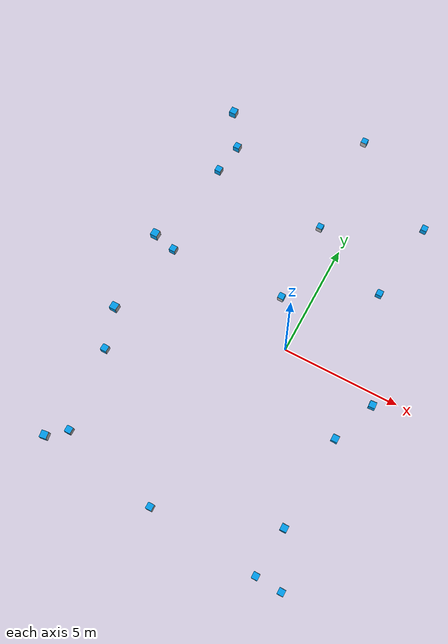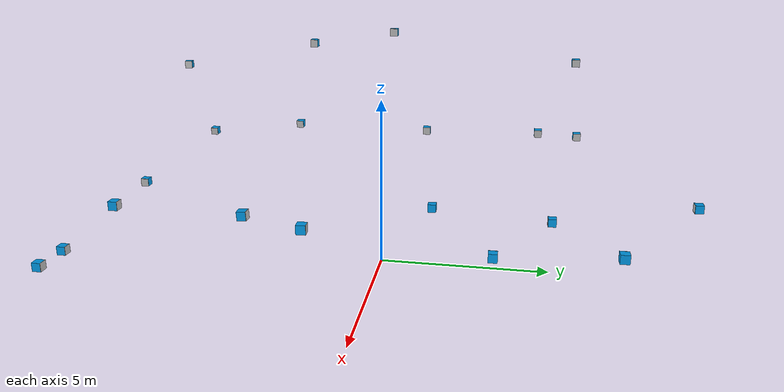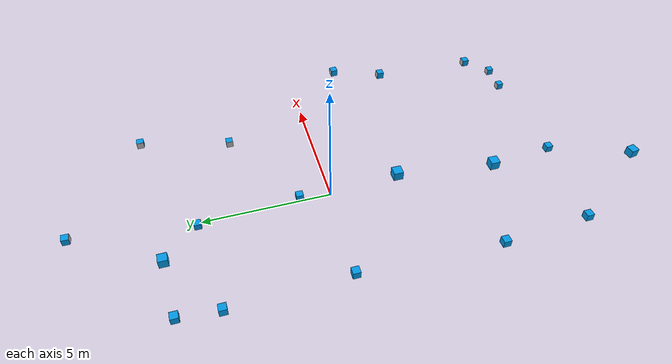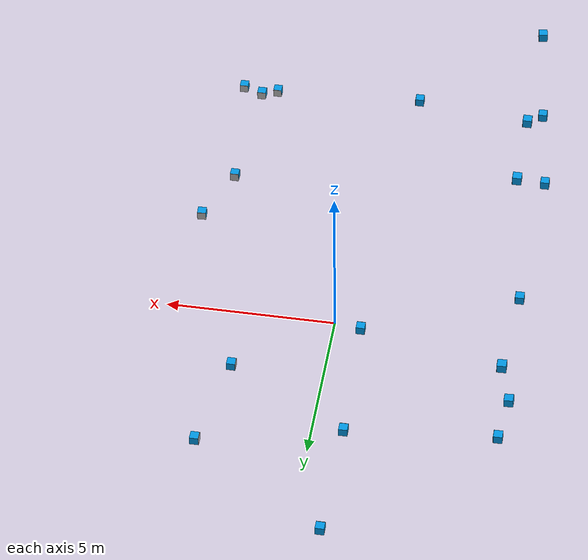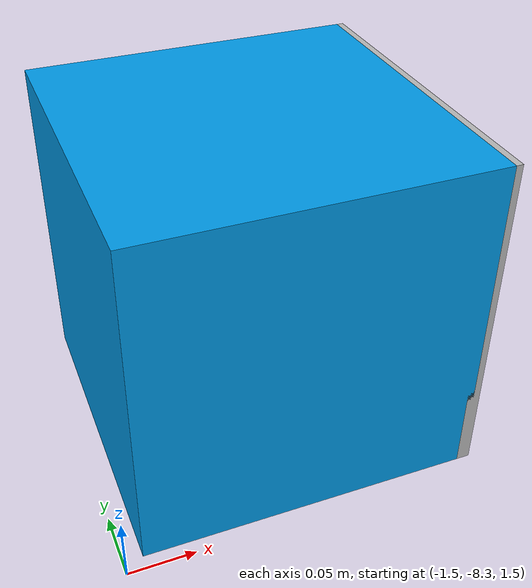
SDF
<sdf version="1.7">
 <world name="default">
  <gravity>0 0 -9.8</gravity>
  <physics name="default_physics" default="0" type="ode">
   <max_step_size>0.001</max_step_size>
   <real_time_factor>1</real_time_factor>
   <real_time_update_rate>1000</real_time_update_rate>
  </physics>
  <light name="Warehouse_CeilingLight_003" type="point">
   <pose>0 0 9 0 -0 0</pose>
   <diffuse>0.5 0.5 0.5 1</diffuse>
   <specular>0.2 0.2 0.2 1</specular>
   <attenuation>
    <range>80</range>
    <constant>0.3</constant>
    <linear>0.01</linear>
    <quadratic>0.001</quadratic>
   </attenuation>
   <direction>0.1 0.1 -1</direction>
   <spot><inner_angle>0</inner_angle><outer_angle>0</outer_angle><falloff>0</falloff></spot>
  </light>
  <model name="qr_box_marker_1">
   <frame name="qr_box_marker_1::__model__" attached_to="qr_box_marker_1::link">
    <pose relative_to="__model__">0 0 0 0 -0 0</pose>
   </frame>
   <static>1</static>
   <link name="qr_box_marker_1::link">
    <visual name="top_face">
     <geometry><box><size>0.25 0.25 0.01</size></box></geometry>
     <material>
      <script>
       <uri>model://qr_box_marker_1/materials/scripts</uri>
       <uri>model://qr_box_marker_1/materials/textures</uri>
       <name>qr_code_material_1</name>
      </script>
     </material>
     <pose>0 0 0.125 0 -0 0</pose>
    </visual>
    <visual name="side_faces">
     <geometry><box><size>0.25 0.25 0.25</size></box></geometry>
     <material>
      <ambient>0 0.6 0.9 1</ambient>
      <diffuse>0 0.6 0.9 1</diffuse>
      <specular>0.1 0.1 0.1 1</specular>
      <emissive>0 0 0 1</emissive>
     </material>
    </visual>
    <collision name="collision"><geometry><box><size>0.25 0.25 0.25</size></box></geometry></collision>
    <pose relative_to="qr_box_marker_1::__model__">0 0 0 0 -0 0</pose>
   </link>
   <pose>-0.97692 1.42304 1.46008 1.58342 -0 0</pose>
  </model>
  <model name="qr_box_marker_2">
   <frame name="qr_box_marker_2::__model__" attached_to="qr_box_marker_2::link">
    <pose relative_to="__model__">0 0 0 0 -0 0</pose>
   </frame>
   <static>1</static>
   <link name="qr_box_marker_2::link">
    <visual name="top_face">
     <geometry><box><size>0.25 0.25 0.01</size></box></geometry>
     <material>
      <script>
       <uri>model://qr_box_marker_2/materials/scripts</uri>
       <uri>model://qr_box_marker_2/materials/textures</uri>
       <name>qr_code_material_2</name>
      </script>
     </material>
     <pose>0 0 0.125 0 -0 0</pose>
    </visual>
    <visual name="side_faces">
     <geometry><box><size>0.25 0.25 0.25</size></box></geometry>
     <material>
      <ambient>0 0.6 0.9 1</ambient>
      <diffuse>0 0.6 0.9 1</diffuse>
      <specular>0.1 0.1 0.1 1</specular>
      <emissive>0 0 0 1</emissive>
     </material>
    </visual>
    <collision name="collision"><geometry><box><size>0.25 0.25 0.25</size></box></geometry></collision>
    <pose relative_to="qr_box_marker_2::__model__">0 0 0 0 -0 0</pose>
   </link>
   <pose>-5.0209 -7.96652 4.93196 1.98565 1.55962 2.13802</pose>
  </model>
  <model name="qr_box_marker_3">
   <frame name="qr_box_marker_3::__model__" attached_to="qr_box_marker_3::link">
    <pose relative_to="__model__">0 0 0 0 -0 0</pose>
   </frame>
   <static>1</static>
   <link name="qr_box_marker_3::link">
    <visual name="top_face">
     <geometry><box><size>0.25 0.25 0.01</size></box></geometry>
     <material>
      <script>
       <uri>model://qr_box_marker_3/materials/scripts</uri>
       <uri>model://qr_box_marker_3/materials/textures/qr_code_3.png</uri>
       <name>qr_code_material_3</name>
      </script>
     </material>
     <pose>0 0 0.125 0 -0 0</pose>
    </visual>
    <visual name="side_faces">
     <geometry><box><size>0.25 0.25 0.25</size></box></geometry>
     <material>
      <ambient>0 0.6 0.9 1</ambient>
      <diffuse>0 0.6 0.9 1</diffuse>
      <specular>0.1 0.1 0.1 1</specular>
      <emissive>0 0 0 1</emissive>
     </material>
    </visual>
    <collision name="collision"><geometry><box><size>0.25 0.25 0.25</size></box></geometry></collision>
    <pose relative_to="qr_box_marker_3::__model__">0 0 0 0 -0 0</pose>
   </link>
   <pose>2.42021 3.37329 1.48272 3.14159 -1.5587 3.14159</pose>
  </model>
  <model name="qr_box_marker_4">
   <frame name="qr_box_marker_4::__model__" attached_to="qr_box_marker_4::link">
    <pose relative_to="__model__">0 0 0 0 -0 0</pose>
   </frame>
   <static>1</static>
   <link name="qr_box_marker_4::link">
    <visual name="top_face">
     <geometry><box><size>0.25 0.25 0.01</size></box></geometry>
     <material>
      <script>
       <uri>model://qr_box_marker_4/materials/scripts</uri>
       <uri>model://qr_box_marker_4/materials/textures/qr_code_4.png</uri>
       <name>qr_code_material_4</name>
      </script>
     </material>
     <pose>0 0 0.125 0 -0 0</pose>
    </visual>
    <visual name="side_faces">
     <geometry><box><size>0.25 0.25 0.25</size></box></geometry>
     <material>
      <ambient>0 0.6 0.9 1</ambient>
      <diffuse>0 0.6 0.9 1</diffuse>
      <specular>0.1 0.1 0.1 1</specular>
      <emissive>0 0 0 1</emissive>
     </material>
    </visual>
    <collision name="collision"><geometry><box><size>0.25 0.25 0.25</size></box></geometry></collision>
    <pose relative_to="qr_box_marker_4::__model__">0 0 0 0 -0 0</pose>
   </link>
   <pose>-1.04472 5.06942 1.19301 1.57476 -0 0</pose>
  </model>
  <model name="qr_box_marker_5">
   <frame name="qr_box_marker_5::__model__" attached_to="qr_box_marker_5::link">
    <pose relative_to="__model__">0 0 0 0 -0 0</pose>
   </frame>
   <static>1</static>
   <link name="qr_box_marker_5::link">
    <visual name="top_face">
     <geometry><box><size>0.25 0.25 0.01</size></box></geometry>
     <material>
      <script>
       <uri>model://qr_box_marker_5/materials/scripts</uri>
       <uri>model://qr_box_marker_5/materials/textures/qr_code_5.png</uri>
       <name>qr_code_material_5</name>
      </script>
     </material>
     <pose>0 0 0.125 0 -0 0</pose>
    </visual>
    <visual name="side_faces">
     <geometry><box><size>0.25 0.25 0.25</size></box></geometry>
     <material>
      <ambient>0 0.6 0.9 1</ambient>
      <diffuse>0 0.6 0.9 1</diffuse>
      <specular>0.1 0.1 0.1 1</specular>
      <emissive>0 0 0 1</emissive>
     </material>
    </visual>
    <collision name="collision"><geometry><box><size>0.25 0.25 0.25</size></box></geometry></collision>
    <pose relative_to="qr_box_marker_5::__model__">0 0 0 0 -0 0</pose>
   </link>
   <pose>-1.06168 9.2099 1.8859 1.58858 -0 0</pose>
  </model>
  <model name="qr_box_marker_6">
   <frame name="qr_box_marker_6::__model__" attached_to="qr_box_marker_6::link">
    <pose relative_to="__model__">0 0 0 0 -0 0</pose>
   </frame>
   <static>1</static>
   <link name="qr_box_marker_6::link">
    <visual name="top_face">
     <geometry><box><size>0.25 0.25 0.01</size></box></geometry>
     <material>
      <script>
       <uri>model://qr_box_marker_6/materials/scripts</uri>
       <uri>model://qr_box_marker_6/materials/textures/qr_code_6.png</uri>
       <name>qr_code_material_6</name>
      </script>
     </material>
     <pose>0 0 0.125 0 -0 0</pose>
    </visual>
    <visual name="side_faces">
     <geometry><box><size>0.25 0.25 0.25</size></box></geometry>
     <material>
      <ambient>0 0.6 0.9 1</ambient>
      <diffuse>0 0.6 0.9 1</diffuse>
      <specular>0.1 0.1 0.1 1</specular>
      <emissive>0 0 0 1</emissive>
     </material>
    </visual>
    <collision name="collision"><geometry><box><size>0.25 0.25 0.25</size></box></geometry></collision>
    <pose relative_to="qr_box_marker_6::__model__">0 0 0 0 -0 0</pose>
   </link>
   <pose>-5.04703 -3.23142 5.81405 -1.57082 0.005164 -1.57528</pose>
  </model>
  <model name="qr_box_marker_7">
   <frame name="qr_box_marker_7::__model__" attached_to="qr_box_marker_7::link">
    <pose relative_to="__model__">0 0 0 0 -0 0</pose>
   </frame>
   <static>1</static>
   <link name="qr_box_marker_7::link">
    <visual name="top_face">
     <geometry><box><size>0.25 0.25 0.01</size></box></geometry>
     <material>
      <script>
       <uri>model://qr_box_marker_7/materials/scripts</uri>
       <uri>model://qr_box_marker_7/materials/textures/qr_code_7.png</uri>
       <name>qr_code_material_7</name>
      </script>
     </material>
     <pose>0 0 0.125 0 -0 0</pose>
    </visual>
    <visual name="side_faces">
     <geometry><box><size>0.25 0.25 0.25</size></box></geometry>
     <material>
      <ambient>0 0.6 0.9 1</ambient>
      <diffuse>0 0.6 0.9 1</diffuse>
      <specular>0.1 0.1 0.1 1</specular>
      <emissive>0 0 0 1</emissive>
     </material>
    </visual>
    <collision name="collision"><geometry><box><size>0.25 0.25 0.25</size></box></geometry></collision>
    <pose relative_to="qr_box_marker_7::__model__">0 0 0 0 -0 0</pose>
   </link>
   <pose>-1.36191 -8.17067 1.63261 0 1.5704 0</pose>
  </model>
  <model name="qr_box_marker_8">
   <frame name="qr_box_marker_8::__model__" attached_to="qr_box_marker_8::link">
    <pose relative_to="__model__">0 0 0 0 -0 0</pose>
   </frame>
   <static>1</static>
   <link name="qr_box_marker_8::link">
    <pose relative_to="qr_box_marker_8::__model__">-0.982347 -0.129249 -0.375443 0 -0.068818 0</pose>
    <visual name="top_face">
     <geometry><box><size>0.25 0.25 0.01</size></box></geometry>
     <material>
      <script>
       <uri>model://qr_box_marker_8/materials/scripts</uri>
       <uri>model://qr_box_marker_8/materials/textures/qr_code_8.png</uri>
       <name>qr_code_material_8</name>
      </script>
     </material>
     <pose>0 0 0.125 0 -0 0</pose>
    </visual>
    <visual name="side_faces">
     <geometry><box><size>0.25 0.25 0.25</size></box></geometry>
     <material>
      <ambient>0 0.6 0.9 1</ambient>
      <diffuse>0 0.6 0.9 1</diffuse>
      <specular>0.1 0.1 0.1 1</specular>
      <emissive>0 0 0 1</emissive>
     </material>
    </visual>
    <collision name="collision"><geometry><box><size>0.25 0.25 0.25</size></box></geometry></collision>
   </link>
   <pose>4.12513 -8.17087 1.00004 -1.571 -1.4e-05 -0.066579</pose>
  </model>
  <model name="qr_box_marker_9">
   <frame name="qr_box_marker_9::__model__" attached_to="qr_box_marker_9::link">
    <pose relative_to="__model__">0 0 0 0 -0 0</pose>
   </frame>
   <static>1</static>
   <link name="qr_box_marker_9::link">
    <visual name="top_face">
     <geometry><box><size>0.25 0.25 0.01</size></box></geometry>
     <material>
      <script>
       <uri>model://qr_box_marker_9/materials/scripts</uri>
       <uri>model://qr_box_marker_9/materials/textures/qr_code_9.png</uri>
       <name>qr_code_material_9</name>
      </script>
     </material>
     <pose>0 0 0.125 0 -0 0</pose>
    </visual>
    <visual name="side_faces">
     <geometry><box><size>0.25 0.25 0.25</size></box></geometry>
     <material>
      <ambient>0 0.6 0.9 1</ambient>
      <diffuse>0 0.6 0.9 1</diffuse>
      <specular>0.1 0.1 0.1 1</specular>
      <emissive>0 0 0 1</emissive>
     </material>
    </visual>
    <collision name="collision"><geometry><box><size>0.25 0.25 0.25</size></box></geometry></collision>
    <pose relative_to="qr_box_marker_9::__model__">0 0 0 0 -0 0</pose>
   </link>
   <pose>4.18185 -8.53078 1.12492 -1.57412 0 0</pose>
  </model>
  <model name="qr_box_marker_10">
   <frame name="qr_box_marker_10::__model__" attached_to="qr_box_marker_10::link">
    <pose relative_to="__model__">0 0 0 0 -0 0</pose>
   </frame>
   <static>1</static>
   <link name="qr_box_marker_10::link">
    <visual name="top_face">
     <geometry><box><size>0.25 0.25 0.01</size></box></geometry>
     <material>
      <script>
       <uri>model://qr_box_marker_10/materials/scripts</uri>
       <uri>model://qr_box_marker_10/materials/textures/qr_code_10.png</uri>
       <name>qr_code_material_10</name>
      </script>
     </material>
     <pose>0 0 0.125 0 -0 0</pose>
    </visual>
    <visual name="side_faces">
     <geometry><box><size>0.25 0.25 0.25</size></box></geometry>
     <material>
      <ambient>0 0.6 0.9 1</ambient>
      <diffuse>0 0.6 0.9 1</diffuse>
      <specular>0.1 0.1 0.1 1</specular>
      <emissive>0 0 0 1</emissive>
     </material>
    </visual>
    <collision name="collision"><geometry><box><size>0.25 0.25 0.25</size></box></geometry></collision>
    <pose relative_to="qr_box_marker_10::__model__">0 0 0 0 -0 0</pose>
   </link>
   <pose>2.83956 6.60611 1.89463 0 -1.56809 0</pose>
  </model>
  <model name="qr_box_marker_11">
   <frame name="qr_box_marker_11::__model__" attached_to="qr_box_marker_11::link">
    <pose relative_to="__model__">0 0 0 0 -0 0</pose>
   </frame>
   <static>1</static>
   <link name="qr_box_marker_11::link">
    <visual name="top_face">
     <geometry><box><size>0.25 0.25 0.01</size></box></geometry>
     <material>
      <script>
       <uri>model://qr_box_marker_11/materials/scripts</uri>
       <uri>model://qr_box_marker_11/materials/textures/qr_code_11.png</uri>
       <name>qr_code_material_11</name>
      </script>
     </material>
     <pose>0 0 0.125 0 -0 0</pose>
    </visual>
    <visual name="side_faces">
     <geometry><box><size>0.25 0.25 0.25</size></box></geometry>
     <material>
      <ambient>0 0.6 0.9 1</ambient>
      <diffuse>0 0.6 0.9 1</diffuse>
      <specular>0.1 0.1 0.1 1</specular>
      <emissive>0 0 0 1</emissive>
     </material>
    </visual>
    <collision name="collision"><geometry><box><size>0.25 0.25 0.25</size></box></geometry></collision>
    <pose relative_to="qr_box_marker_11::__model__">0 0 0 0 -0 0</pose>
   </link>
   <pose>3.44827 -3.03088 2.64547 -1.51928 0 0</pose>
  </model>
  <model name="qr_box_marker_12">
   <frame name="qr_box_marker_12::__model__" attached_to="qr_box_marker_12::link">
    <pose relative_to="__model__">0 0 0 0 -0 0</pose>
   </frame>
   <static>1</static>
   <link name="qr_box_marker_12::link">
    <visual name="top_face">
     <geometry><box><size>0.25 0.25 0.01</size></box></geometry>
     <material>
      <script>
       <uri>model://qr_box_marker_12/materials/scripts</uri>
       <uri>model://qr_box_marker_12/materials/textures/qr_code_12.png</uri>
       <name>qr_code_material_12</name>
      </script>
     </material>
     <pose>0 0 0.125 0 -0 0</pose>
    </visual>
    <visual name="side_faces">
     <geometry><box><size>0.25 0.25 0.25</size></box></geometry>
     <material>
      <ambient>0 0.6 0.9 1</ambient>
      <diffuse>0 0.6 0.9 1</diffuse>
      <specular>0.1 0.1 0.1 1</specular>
      <emissive>0 0 0 1</emissive>
     </material>
    </visual>
    <collision name="collision"><geometry><box><size>0.25 0.25 0.25</size></box></geometry></collision>
    <pose relative_to="qr_box_marker_12::__model__">0 0 0 0 -0 0</pose>
   </link>
   <pose>4.10109 -1.28509 2.65949 -1.58665 0.000939 0.059159</pose>
  </model>
  <model name="qr_box_marker_13">
   <frame name="qr_box_marker_13::__model__" attached_to="qr_box_marker_13::link">
    <pose relative_to="__model__">0 0 0 0 -0 0</pose>
   </frame>
   <static>1</static>
   <link name="qr_box_marker_13::link">
    <visual name="top_face">
     <geometry><box><size>0.25 0.25 0.01</size></box></geometry>
     <material>
      <script>
       <uri>model://qr_box_marker_13/materials/scripts</uri>
       <uri>model://qr_box_marker_13/materials/textures/qr_code_13.png</uri>
       <name>qr_code_material_13</name>
      </script>
     </material>
     <pose>0 0 0.125 0 -0 0</pose>
    </visual>
    <visual name="side_faces">
     <geometry><box><size>0.25 0.25 0.25</size></box></geometry>
     <material>
      <ambient>0 0.6 0.9 1</ambient>
      <diffuse>0 0.6 0.9 1</diffuse>
      <specular>0.1 0.1 0.1 1</specular>
      <emissive>0 0 0 1</emissive>
     </material>
    </visual>
    <collision name="collision"><geometry><box><size>0.25 0.25 0.25</size></box></geometry></collision>
    <pose relative_to="qr_box_marker_13::__model__">0 0 0 0 -0 0</pose>
   </link>
   <pose>-5.42175 6 2.71572 3.14159 1.5701 3.14159</pose>
  </model>
  <model name="qr_box_marker_14">
   <frame name="qr_box_marker_14::__model__" attached_to="qr_box_marker_14::link">
    <pose relative_to="__model__">0 0 0 0 -0 0</pose>
   </frame>
   <static>1</static>
   <link name="qr_box_marker_14::link">
    <visual name="top_face">
     <geometry><box><size>0.25 0.25 0.01</size></box></geometry>
     <material>
      <script>
       <uri>model://qr_box_marker_14/materials/scripts</uri>
       <uri>model://qr_box_marker_14/materials/textures/qr_code_14.png</uri>
       <name>qr_code_material_14</name>
      </script>
     </material>
     <pose>0 0 0.125 0 -0 0</pose>
    </visual>
    <visual name="side_faces">
     <geometry><box><size>0.25 0.25 0.25</size></box></geometry>
     <material>
      <ambient>0 0.6 0.9 1</ambient>
      <diffuse>0 0.6 0.9 1</diffuse>
      <specular>0.1 0.1 0.1 1</specular>
      <emissive>0 0 0 1</emissive>
     </material>
    </visual>
    <collision name="collision"><geometry><box><size>0.25 0.25 0.25</size></box></geometry></collision>
    <pose relative_to="qr_box_marker_14::__model__">0 0 0 0 -0 0</pose>
   </link>
   <pose>-5.40003 5.77804 5.30717 3.14159 1.54304 3.14159</pose>
  </model>
  <model name="qr_box_marker_15">
   <frame name="qr_box_marker_15::__model__" attached_to="qr_box_marker_15::link">
    <pose relative_to="__model__">0 0 0 0 -0 0</pose>
   </frame>
   <static>1</static>
   <link name="qr_box_marker_15::link">
    <visual name="top_face">
     <geometry><box><size>0.25 0.25 0.01</size></box></geometry>
     <material>
      <script>
       <uri>model://qr_box_marker_15/materials/scripts</uri>
       <uri>model://qr_box_marker_15/materials/textures/qr_code_15.png</uri>
       <name>qr_code_material_15</name>
      </script>
     </material>
     <pose>0 0 0.125 0 -0 0</pose>
    </visual>
    <visual name="side_faces">
     <geometry><box><size>0.25 0.25 0.25</size></box></geometry>
     <material>
      <ambient>0 0.6 0.9 1</ambient>
      <diffuse>0 0.6 0.9 1</diffuse>
      <specular>0.1 0.1 0.1 1</specular>
      <emissive>0 0 0 1</emissive>
     </material>
    </visual>
    <collision name="collision"><geometry><box><size>0.25 0.25 0.25</size></box></geometry></collision>
    <pose relative_to="qr_box_marker_15::__model__">0 0 0 0 -0 0</pose>
   </link>
   <pose>-5.41345 0.745299 2.71646 3.14159 1.55548 3.14159</pose>
  </model>
  <model name="qr_box_marker_16">
   <frame name="qr_box_marker_16::__model__" attached_to="qr_box_marker_16::link">
    <pose relative_to="__model__">0 0 0 0 -0 0</pose>
   </frame>
   <static>1</static>
   <link name="qr_box_marker_16::link">
    <visual name="top_face">
     <geometry><box><size>0.25 0.25 0.01</size></box></geometry>
     <material>
      <script>
       <uri>model://qr_box_marker_16/materials/scripts</uri>
       <uri>model://qr_box_marker_16/materials/textures/qr_code_16.png</uri>
       <name>qr_code_material_16</name>
      </script>
     </material>
     <pose>0 0 0.125 0 -0 0</pose>
    </visual>
    <visual name="side_faces">
     <geometry><box><size>0.25 0.25 0.25</size></box></geometry>
     <material>
      <ambient>0 0.6 0.9 1</ambient>
      <diffuse>0 0.6 0.9 1</diffuse>
      <specular>0.1 0.1 0.1 1</specular>
      <emissive>0 0 0 1</emissive>
     </material>
    </visual>
    <collision name="collision"><geometry><box><size>0.25 0.25 0.25</size></box></geometry></collision>
    <pose relative_to="qr_box_marker_16::__model__">0 0 0 0 -0 0</pose>
   </link>
   <pose>-5.61179 -4.00324 2.7167 3.14159 1.55006 3.14159</pose>
  </model>
  <model name="qr_box_marker_17">
   <frame name="qr_box_marker_17::__model__" attached_to="qr_box_marker_17::link">
    <pose relative_to="__model__">0 0 0 0 -0 0</pose>
   </frame>
   <static>1</static>
   <link name="qr_box_marker_17::link">
    <visual name="top_face">
     <geometry><box><size>0.25 0.25 0.01</size></box></geometry>
     <material>
      <script>
       <uri>model://qr_box_marker_17/materials/scripts</uri>
       <uri>model://qr_box_marker_17/materials/textures/qr_code_17.png</uri>
       <name>qr_code_material_17</name>
      </script>
     </material>
     <pose>0 0 0.125 0 -0 0</pose>
    </visual>
    <visual name="side_faces">
     <geometry><box><size>0.25 0.25 0.25</size></box></geometry>
     <material>
      <ambient>0 0.6 0.9 1</ambient>
      <diffuse>0 0.6 0.9 1</diffuse>
      <specular>0.1 0.1 0.1 1</specular>
      <emissive>0 0 0 1</emissive>
     </material>
    </visual>
    <collision name="collision"><geometry><box><size>0.25 0.25 0.25</size></box></geometry></collision>
    <pose relative_to="qr_box_marker_17::__model__">0 0 0 0 -0 0</pose>
   </link>
   <pose>3.27509 -6.6748 2.63101 -1.57481 0 0</pose>
  </model>
  <model name="qr_box_marker_18">
   <frame name="qr_box_marker_18::__model__" attached_to="qr_box_marker_18::link">
    <pose relative_to="__model__">0 0 0 0 -0 0</pose>
   </frame>
   <static>1</static>
   <link name="qr_box_marker_18::link">
    <visual name="top_face">
     <geometry><box><size>0.25 0.25 0.01</size></box></geometry>
     <material>
      <script>
       <uri>model://qr_box_marker_18/materials/scripts</uri>
       <uri>model://qr_box_marker_18/materials/textures/qr_code_18.png</uri>
       <name>qr_code_material_18</name>
      </script>
     </material>
     <pose>0 0 0.125 0 -0 0</pose>
    </visual>
    <visual name="side_faces">
     <geometry><box><size>0.25 0.25 0.25</size></box></geometry>
     <material>
      <ambient>0 0.6 0.9 1</ambient>
      <diffuse>0 0.6 0.9 1</diffuse>
      <specular>0.1 0.1 0.1 1</specular>
      <emissive>0 0 0 1</emissive>
     </material>
    </visual>
    <collision name="collision"><geometry><box><size>0.25 0.25 0.25</size></box></geometry></collision>
    <pose relative_to="qr_box_marker_18::__model__">0 0 0 0 -0 0</pose>
   </link>
   <pose>-5.21894 -7.2186 2.41302 -3.11711 1.51687 -3.11088</pose>
  </model>
  <model name="qr_box_marker_19">
   <frame name="qr_box_marker_19::__model__" attached_to="qr_box_marker_19::link">
    <pose relative_to="__model__">0 0 0 0 -0 0</pose>
   </frame>
   <static>1</static>
   <link name="qr_box_marker_19::link">
    <visual name="top_face">
     <geometry><box><size>0.25 0.25 0.01</size></box></geometry>
     <material>
      <script>
       <uri>model://qr_box_marker_19/materials/scripts</uri>
       <uri>model://qr_box_marker_19/materials/textures/qr_code_19.png</uri>
       <name>qr_code_material_19</name>
      </script>
     </material>
     <pose>0 0 0.125 0 -0 0</pose>
    </visual>
    <visual name="side_faces">
     <geometry><box><size>0.25 0.25 0.25</size></box></geometry>
     <material>
      <ambient>0 0.6 0.9 1</ambient>
      <diffuse>0 0.6 0.9 1</diffuse>
      <specular>0.1 0.1 0.1 1</specular>
      <emissive>0 0 0 1</emissive>
     </material>
    </visual>
    <collision name="collision"><geometry><box><size>0.25 0.25 0.25</size></box></geometry></collision>
    <pose relative_to="qr_box_marker_19::__model__">0 0 0 0 -0 0</pose>
   </link>
   <pose>-5.56108 4.6757 2.74738 -3.06298 1.51028 -3.06557</pose>
  </model>
  <model name="qr_box_marker_20">
   <frame name="qr_box_marker_20::__model__" attached_to="qr_box_marker_20::link">
    <pose relative_to="__model__">0 0 0 0 -0 0</pose>
   </frame>
   <static>1</static>
   <link name="qr_box_marker_20::link">
    <visual name="top_face">
     <geometry><box><size>0.25 0.25 0.01</size></box></geometry>
     <material>
      <script>
       <uri>model://qr_box_marker_20/materials/scripts</uri>
       <uri>model://qr_box_marker_20/materials/textures/qr_code_20.png</uri>
       <name>qr_code_material_20</name>
      </script>
     </material>
     <pose>0 0 0.125 0 -0 0</pose>
    </visual>
    <visual name="side_faces">
     <geometry><box><size>0.25 0.25 0.25</size></box></geometry>
     <material>
      <ambient>0 0.6 0.9 1</ambient>
      <diffuse>0 0.6 0.9 1</diffuse>
      <specular>0.1 0.1 0.1 1</specular>
      <emissive>0 0 0 1</emissive>
     </material>
    </visual>
    <collision name="collision"><geometry><box><size>0.25 0.25 0.25</size></box></geometry></collision>
    <pose relative_to="qr_box_marker_20::__model__">0 0 0 0 -0 0</pose>
   </link>
   <pose>-5.05802 -0.403435 6.25355 0 1.55901 0</pose>
  </model>
  <magnetic_field>6e-06 2.3e-05 -4.2e-05</magnetic_field>
  <atmosphere type="adiabatic"/>
  <scene><ambient>0.4 0.4 0.4 1</ambient><background>0.7 0.7 0.7 1</background><shadows>1</shadows></scene>
  <audio><device>default</device></audio>
  <spherical_coordinates>
   <surface_model>EARTH_WGS84</surface_model>
   <latitude_deg>0</latitude_deg>
   <longitude_deg>0</longitude_deg>
   <elevation>0</elevation>
   <heading_deg>0</heading_deg>
  </spherical_coordinates>
 </world>
</sdf>
